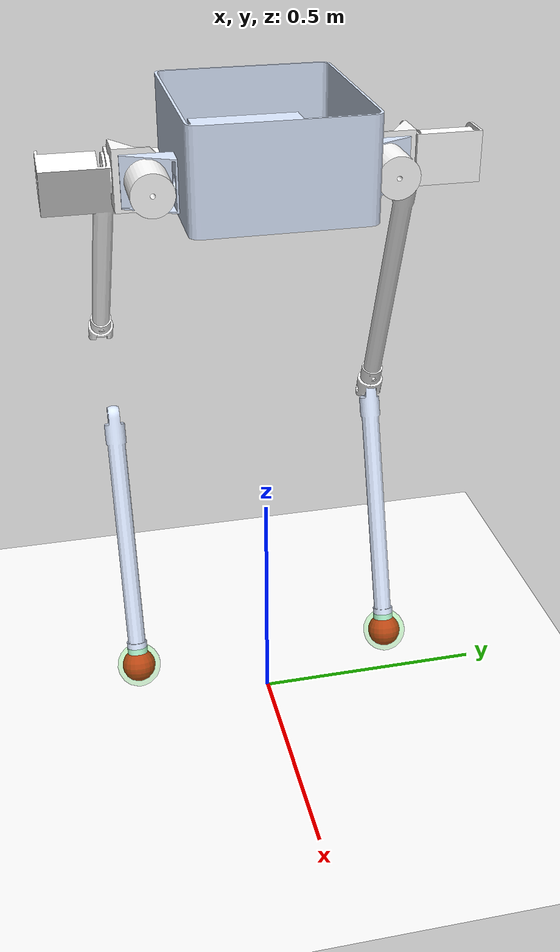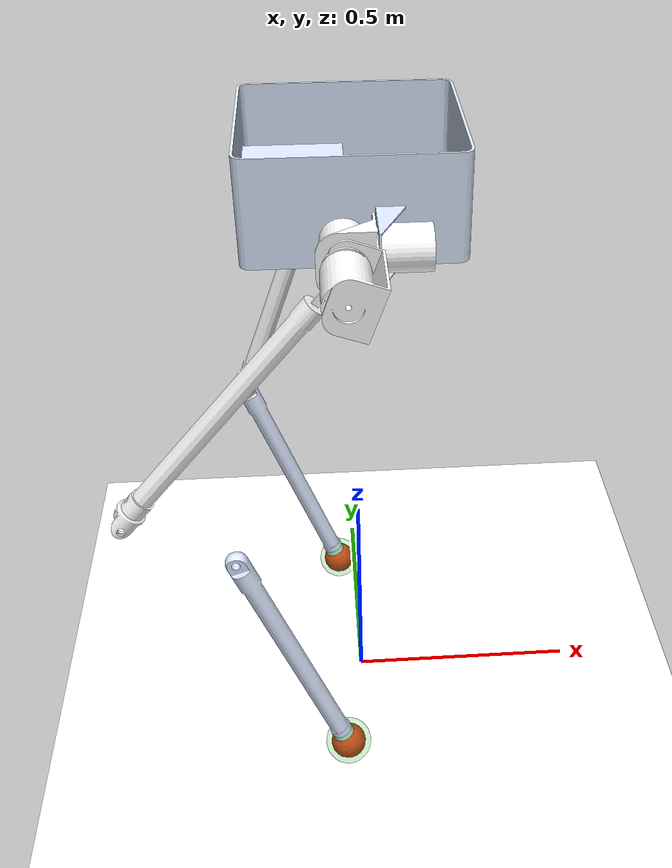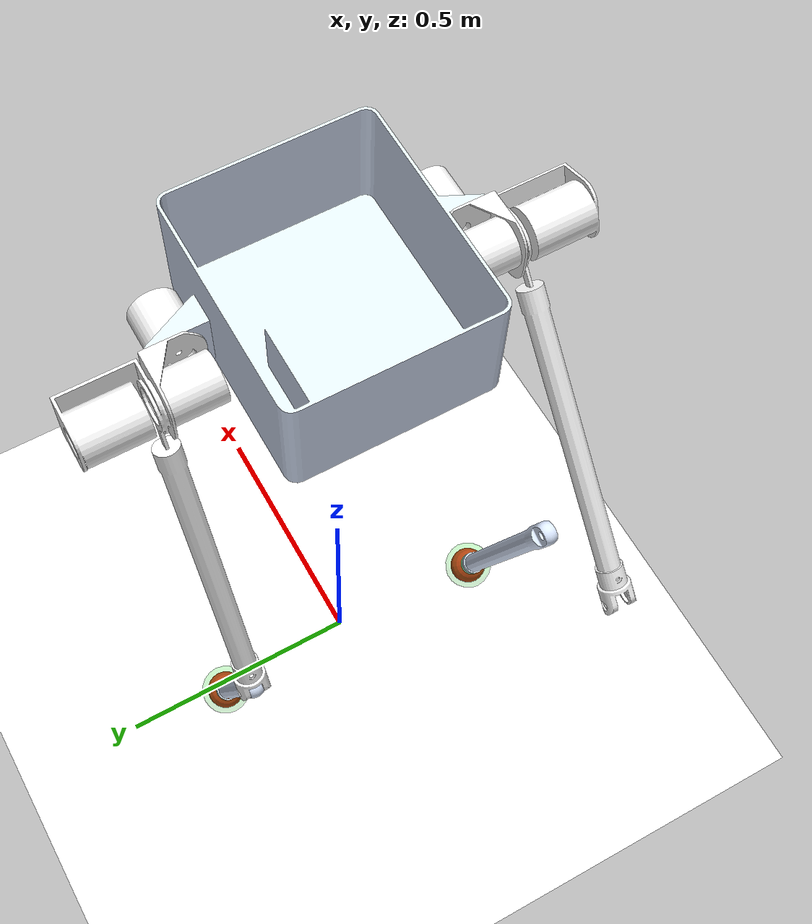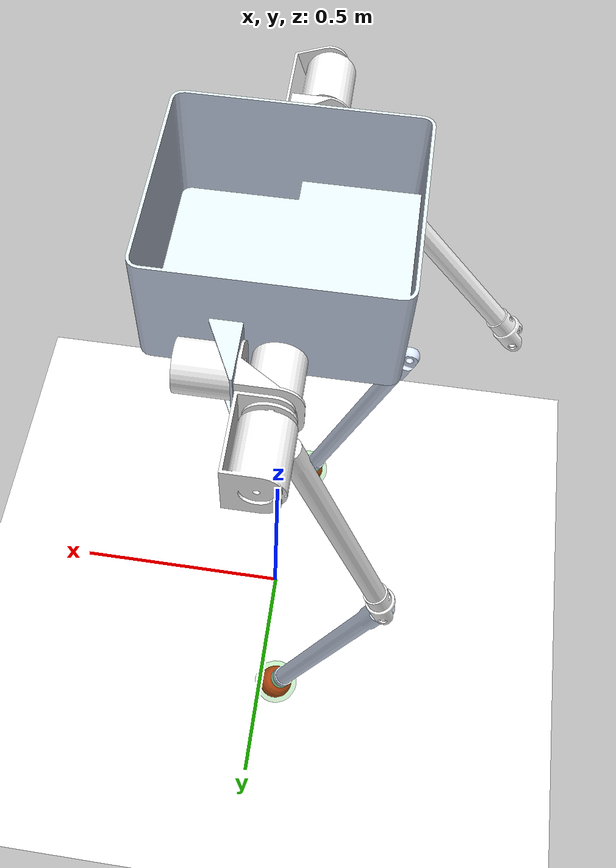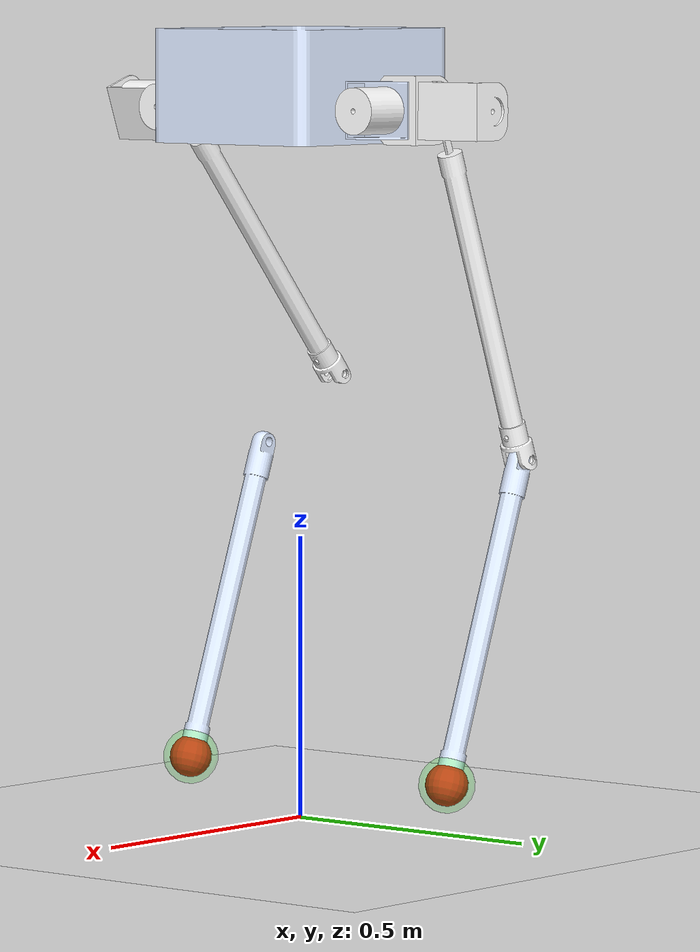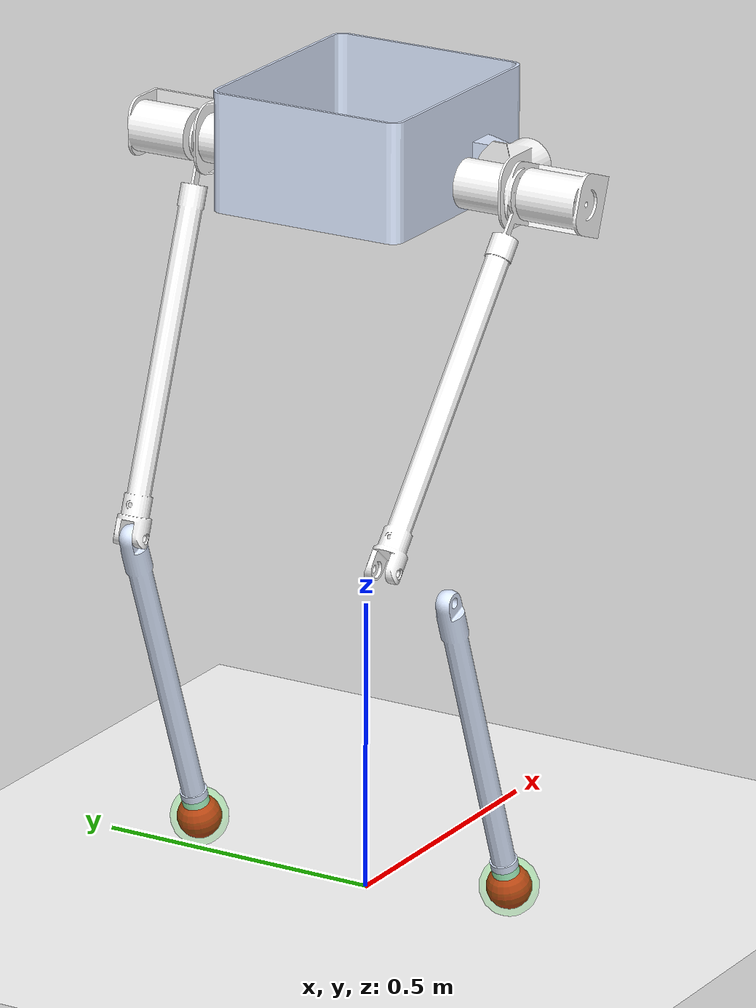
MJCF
<?xml version="1.0" encoding="utf-8"?>
<mujoco model="srl_real_bot_v1">
  <!-- 260204模型转换 -->
  <!-- 包含最新的动力学参数与关节角度偏置 -->
  <statistic center="0 0 1" extent="2"/>

  <!-- 保持角度制 -->
  <compiler angle="degree" meshdir="meshes_v1/" />

  <!--
       积分器：RK4
       时间步：0.005 (200Hz)
       保留原设置
  -->
  <option timestep="0.005" integrator="RK4"/>

  <asset>
    <!-- 网格文件引用 -->
    <mesh name="base_link" file="base_link.STL"/>
    <mesh name="left_hip_x_link" file="left_hip_x_link.STL"/>
    <mesh name="left_hip_y_link" file="left_hip_y_link.STL"/>
    <mesh name="left_knee_link" file="left_knee_link.STL"/>
    <mesh name="right_hip_x_link" file="right_hip_x_link.STL"/>
    <mesh name="right_hip_y_link" file="right_hip_y_link.STL"/>
    <mesh name="right_knee_link" file="right_knee_link.STL"/>

    <material name="blue_mat" rgba="0.86 0.91 1 1"/>
    <material name="white_mat" rgba="1 1 1 1"/>
    <material name="collision_mat" rgba="0.8 0.5 0.3 0.5"/>
  </asset>

  <default>
    <!-- 关节阻尼与参考文件保持一致 -->
    <joint damping="2.0" armature="0.01" limited="true" stiffness="5" type="hinge"/>
    <!-- 几何体物理属性 -->
    <geom solref="0.005 1" solimp="0.9 0.95 0.001" friction="1.0 0.005 0.0001" condim="3"/>

    <default class="visual">
        <geom type="mesh" contype="0" conaffinity="0" group="2" material="blue_mat"/>
    </default>

    <default class="collision">
        <geom contype="1" conaffinity="1" group="3" material="collision_mat"/>
    </default>

    <motor ctrllimited="true" ctrlrange="-1 1"/>
  </default>

  <worldbody>
    <light pos="0 0 3" dir="0 0 -1" directional="true"/>
    <geom  pos="0 0 0" name="floor" type="plane" size="0 0 0.1" material="white_mat" rgba="0.5 0.5 0.5 1"/>

    <!-- ================= BASE LINK ================= -->
    <body name="base_link" pos="0 0 1.20" euler="0 0 0">
      <freejoint />
      <!--
         URDF 260204 Data:
         Mass: 10.276
         Origin: -0.063056 -7.8767E-17 0.059865
         Inertia: ixx=0.12836, iyy=0.15292, izz=0.23481, ixz=-0.003528
      -->
      <inertial pos="-0.063056 0 0.059865" mass="10.276" fullinertia="0.12836 0.15292 0.23481 0 -0.003528 0"/>

      <geom mesh="base_link" class="visual"/>
      <geom type="box" size="0.15 0.05 0.08" pos="0 0 0.1" class="collision"/>

      <!-- ================= LEFT LEG CHAIN ================= -->
      <!-- Left Hip X (Roll) -->
      <!-- URDF Origin: 0.03899 0.227 0.06, RPY 0 0 0 -->
      <body name="left_hip_x_link" pos="0.039 0.227 0.06" euler="0 0 0">
        <!--
           URDF 260204 Data:
           Mass: 1.999
           Origin: 0.020751 0.0093109 0
           Inertia: ixx=0.002205, iyy=0.003362, izz=0.003412, ixy=0.000501
        -->
        <inertial pos="0.020751 0.0093109 0" mass="1.999" fullinertia="0.002205 0.003362 0.003412 0.000501 0 0"/>

        <!-- URDF Limit: -1.05 to 1.05 rad (~60.16 deg) -->
        <joint name="left_hip_x_joint" axis="1 0 0" range="-45.0 45.0" damping="20" stiffness="120" armature="0.1"/>

        <geom mesh="left_hip_x_link" material="white_mat" class="visual"/>
        <geom type="capsule" size="0.05" fromto="-0.05 0 0 0.05 0 0" class="collision"/>

        <!-- Left Hip Y (Pitch - Thigh) -->
        <!-- URDF Origin: -0.06 0.056 0 -->
        <!-- URDF RPY: 0 0.349065 0 => Euler: 0 20(deg) 0 -->
        <body name="left_hip_y_link" pos="-0.06 0.056 0" euler="0 20 0">
          <inertial pos="0.0044865 0.029882 -0.11897" mass="5.4706" fullinertia="0.13911 0.11979 0.024508 -0.000374 -0.000469 -0.004176"/>

          <joint name="left_hip_y_joint" axis="0 -1 0" range="-60.16 60.16" damping="25" stiffness="210" armature="0.1"/>

          <geom mesh="left_hip_y_link" material="white_mat" class="visual"/>

          <!-- 碰撞体更新：根据新 Knee Joint 位置 (0 0.0155 -0.661) 设置胶囊体方向 -->
          <!-- 此时的坐标系是相对于 Hip Y Link 的 -->
          <geom type="capsule" size="0.04" fromto="0 0 0 0 0.0155 -0.661" class="collision"/>

          <!-- Left Knee (Pitch - Shank) -->
          <!-- URDF Origin: 0 0.0155 -0.661 -->
          <!-- URDF RPY: 0 -0.69813 0 => Euler: 0 -40(deg) 0 -->
          <body name="left_knee_link" pos="0 0.0155 -0.661" euler="0 -40 0">
            <!--
               URDF 260204 Data:
               Mass: 0.66217
               Origin: ~0 ~0 -0.28802
               Inertia: ixx=0.031693, iyy=0.03171, izz=0.00023
            -->
            <inertial pos="0 0 -0.28802" mass="0.66217" fullinertia="0.031693 0.03171 0.00023 0 0 0"/>

            <joint name="left_knee_joint" axis="0 -1 0" range="-60.16 60.16" damping="40" stiffness="280" armature="0.1"/>

            <geom mesh="left_knee_link" class="visual"/>
            <!-- 碰撞体：根据新的腿长进行适配，大概估计到脚部位置 -->
            <geom type="capsule" size="0.035" fromto="0 0 0 0 0 -0.59" class="collision"/>

            <!-- 脚底接触球 -->
            <body name="left_foot" pos="0 0 -0.595">
                <inertial pos="0 0 0" mass="0.06" diaginertia="0.0001 0.0001 0.0001"/>
                <geom name="left_foot_contact" type="sphere" size="0.038"
                      friction="0.9 0.01 0.005"
                      contype="1" conaffinity="1"
                      rgba="0.9 0.1 0.1 1"/>
                <site name="left_foot_touch" size="0.05" rgba="0 1 0 0.2"/>
            </body>

          </body>
        </body>
      </body>

      <!-- ================= RIGHT LEG CHAIN ================= -->
      <!-- Right Hip X -->
      <!-- URDF Origin: 0.039 -0.227 0.06, RPY 0 0 0 -->
      <body name="right_hip_x_link" pos="0.039 -0.227 0.06" euler="0 0 0">
        <!--
           URDF 260204 Data:
           Mass: 1.999
           Origin: 0.020751 -0.0093109 0
           Inertia: ixx=0.002205, iyy=0.003362, izz=0.003412, ixy=-0.000501
        -->
        <inertial pos="0.020751 -0.0093109 0" mass="1.999" fullinertia="0.002205 0.003362 0.003412 -0.000501 0 0"/>

        <joint name="right_hip_x_joint" axis="-1 0 0" range="-45.0 45.0" damping="20" stiffness="120" armature="0.1"/>

        <geom mesh="right_hip_x_link" material="white_mat" class="visual"/>
        <geom type="capsule" size="0.05" fromto="-0.05 0 0 0.05 0 0" class="collision"/>

        <!-- Right Hip Y -->
        <!-- URDF Origin: -0.06 -0.056 0 -->
        <!-- URDF RPY: 0 0.349065 0 => Euler: 0 20(deg) 0 -->
        <body name="right_hip_y_link" pos="-0.06 -0.056 0" euler="0 20 0">
          <inertial pos="0.0044865 -0.029882 -0.11897" mass="5.4706" fullinertia="0.13911 0.11979 0.024508 0.000374 -0.000469 0.004176"/>

          <joint name="right_hip_y_joint" axis="0 -1 0" range="-60.16 60.16" damping="25" stiffness="210" armature="0.1"/>

          <geom mesh="right_hip_y_link" material="white_mat" class="visual"/>
          <!-- 碰撞体更新：指向 Right Knee (0 -0.0155 -0.661) -->
          <geom type="capsule" size="0.04" fromto="0 0 0 0 -0.0155 -0.661" class="collision"/>

          <!-- Right Knee -->
          <!-- URDF Origin: 0 -0.0155 -0.661 -->
          <!-- URDF RPY: 0 -0.69813 0 => Euler: 0 -40(deg) 0 -->
          <body name="right_knee_link" pos="0 -0.0155 -0.661" euler="0 -40 0">
            <!--
               URDF 260204 Data:
               Mass: 0.66217
               Origin: ~0 ~0 -0.28802
               Inertia: ixx=0.031693, iyy=0.03171, izz=0.00023
            -->
            <inertial pos="0 0 -0.28802" mass="0.66217" fullinertia="0.031693 0.03171 0.00023 0 0 0"/>

            <joint name="right_knee_joint" axis="0 -1 0" range="-60.16 60.16" damping="40" stiffness="280" armature="0.1"/>

            <geom mesh="right_knee_link" class="visual"/>
            <geom type="capsule" size="0.035" fromto="0 0 0 0 0 -0.59" class="collision"/>

            <!-- 脚底接触球 -->
            <body name="right_foot" pos="0 0 -0.595">
                <inertial pos="0 0 0" mass="0.06" diaginertia="0.0001 0.0001 0.0001"/>
                <geom name="right_foot_contact" type="sphere" size="0.038"
                      friction="0.9 0.01 0.005"
                      contype="1" conaffinity="1"
                      rgba="0.9 0.1 0.1 1"/>
                <site name="right_foot_touch" size="0.05" rgba="0 1 0 0.2"/>
            </body>

          </body>
        </body>
      </body>

    </body>
  </worldbody>

  <actuator>
    <!--
      Action Space: [-1, 1]
      Max Torque: 450 Nm
    -->
    <motor name="left_hip_x_torque" joint="left_hip_x_joint" gear="450"  />
    <motor name="left_hip_y_torque" joint="left_hip_y_joint" gear="450"  />
    <motor name="left_knee_torque" joint="left_knee_joint" gear="450"  />

    <motor name="right_hip_x_torque" joint="right_hip_x_joint" gear="450"  />
    <motor name="right_hip_y_torque" joint="right_hip_y_joint" gear="450"  />
    <motor name="right_knee_torque" joint="right_knee_joint" gear="450"  />
  </actuator>
</mujoco>
